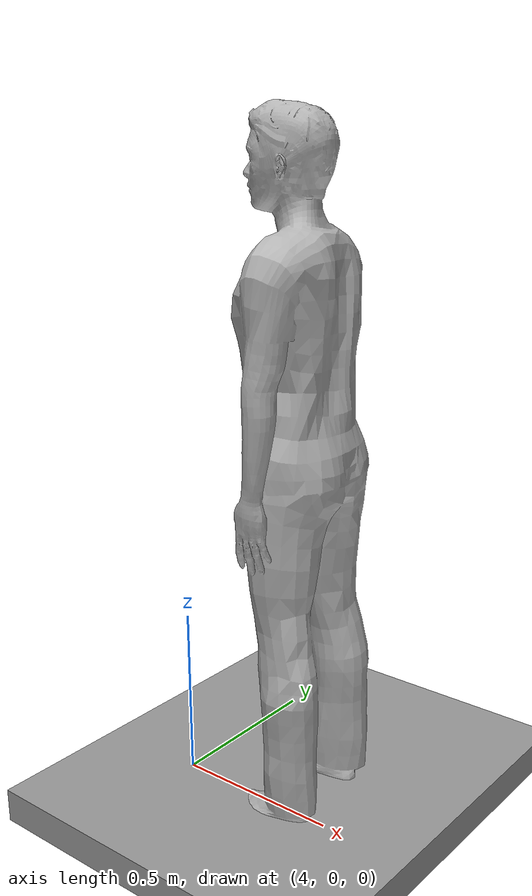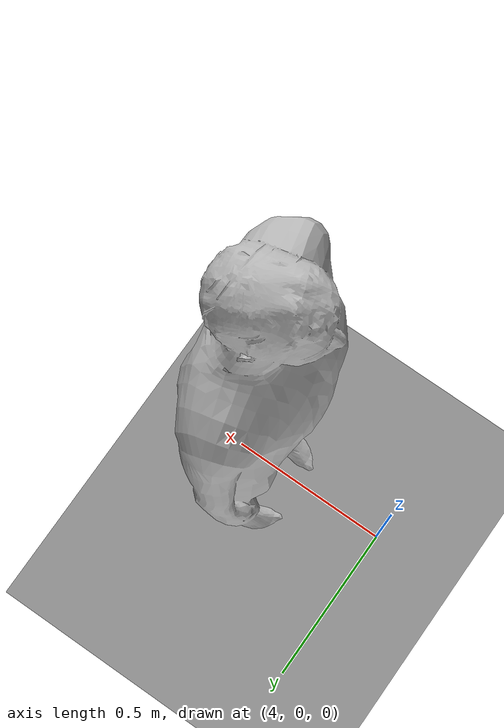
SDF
<sdf version="1.5">
 <world name="default">
  <light name="sun" type="directional">
   <pose>0 0 10 0 -0 0</pose>
   <diffuse>0.8 0.8 0.8 1</diffuse>
   <specular>0.1 0.1 0.1 1</specular>
   <attenuation>
    <range>1000</range>
    <constant>0.9</constant>
    <linear>0.01</linear>
    <quadratic>0.001</quadratic>
   </attenuation>
   <direction>-0.5 0.5 -1</direction>
  </light>
  <model name="ground_plane">
   <static>1</static>
   <link name="link">
    <collision name="collision">
     <geometry><plane><normal>0 0 1</normal><size>100 100</size></plane></geometry>
     <surface><friction><ode><mu>100</mu><mu2>50</mu2></ode></friction></surface>
    </collision>
    <visual name="visual">
     <cast_shadows>0</cast_shadows>
     <geometry><plane><normal>0 0 1</normal><size>100 100</size></plane></geometry>
     <material>
      <script><uri>file://media/materials/scripts/gazebo.material</uri><name>Gazebo/Grey</name></script>
     </material>
    </visual>
   </link>
  </model>
  <gravity>0 0 -9.8</gravity>
  <magnetic_field>6e-06 2.3e-05 -4.2e-05</magnetic_field>
  <atmosphere type="adiabatic"/>
  <physics name="default_physics" default="0" type="ode">
   <max_step_size>0.001</max_step_size>
   <real_time_factor>1</real_time_factor>
   <real_time_update_rate>1000</real_time_update_rate>
  </physics>
  <scene><ambient>0.4 0.4 0.4 1</ambient><background>0.7 0.7 0.7 1</background><shadows>1</shadows></scene>
  <spherical_coordinates>
   <surface_model>EARTH_WGS84</surface_model>
   <latitude_deg>0</latitude_deg>
   <longitude_deg>0</longitude_deg>
   <elevation>0</elevation>
   <heading_deg>0</heading_deg>
  </spherical_coordinates>
  <model name="ground_plane_0">
   <static>1</static>
   <link name="link">
    <collision name="collision">
     <geometry><plane><normal>0 0 1</normal><size>100 100</size></plane></geometry>
     <surface><friction><ode><mu>100</mu><mu2>50</mu2></ode></friction></surface>
    </collision>
    <visual name="visual">
     <cast_shadows>0</cast_shadows>
     <geometry><plane><normal>0 0 1</normal><size>100 100</size></plane></geometry>
     <material>
      <script><uri>file://media/materials/scripts/gazebo.material</uri><name>Gazebo/Grey</name></script>
     </material>
    </visual>
   </link>
   <pose>0.014078 0.028202 0 0 -0 0</pose>
  </model>
  <model name="person_standing">
   <link name="link">
    <inertial>
     <pose>0 -0.1 0.95 0 -0 0</pose>
     <mass>80</mass>
     <inertia><ixx>24.88</ixx><ixy>0</ixy><ixz>0</ixz><iyy>25.73</iyy><iyz>0</iyz><izz>2.48</izz></inertia>
    </inertial>
    <collision name="bottom">
     <pose>0 -0.1 0.01 0 -0 0</pose>
     <geometry><box><size>0.5 0.35 0.02</size></box></geometry>
    </collision>
    <collision name="person">
     <pose>0 0 0.02 0.04 -0 0</pose>
     <geometry><mesh><uri>model://person_standing/meshes/standing.dae</uri><scale>1 1 1</scale></mesh></geometry>
    </collision>
    <visual name="visual">
     <pose>0 0 0.02 0.04 -0 0</pose>
     <geometry><mesh><uri>model://person_standing/meshes/standing.dae</uri><scale>1 1 1</scale></mesh></geometry>
    </visual>
   </link>
   <pose>4.45962 0.064573 0 0 0 -1.44282</pose>
  </model>
 </world>
</sdf>
